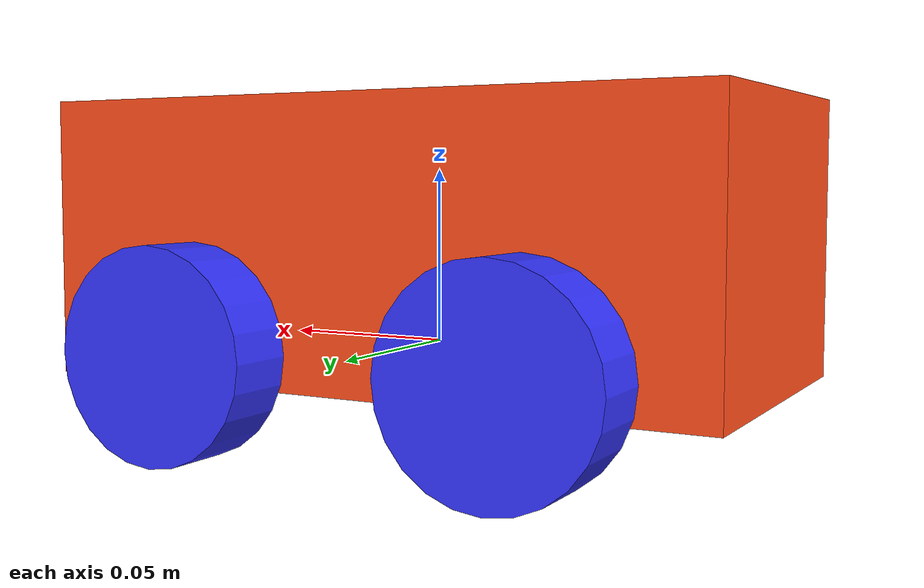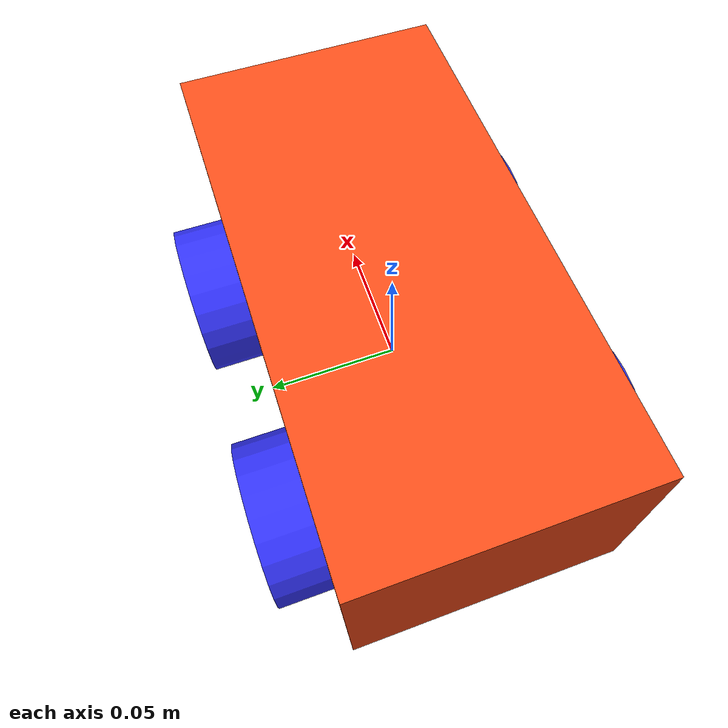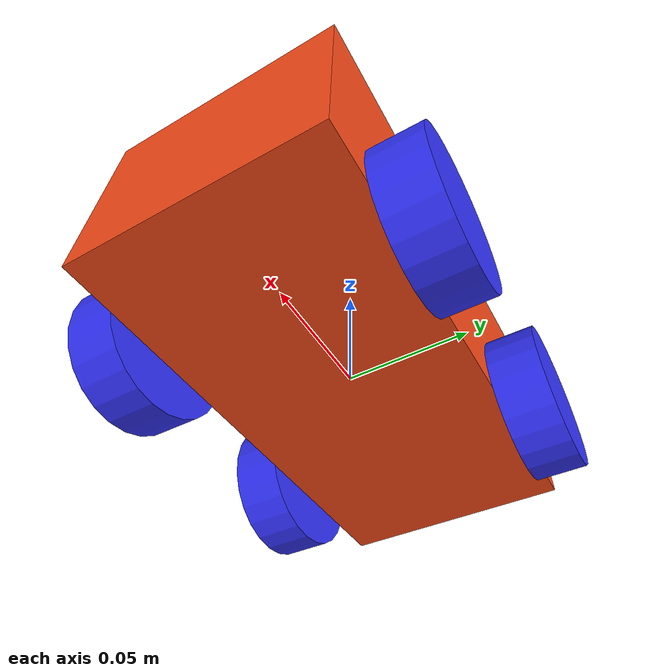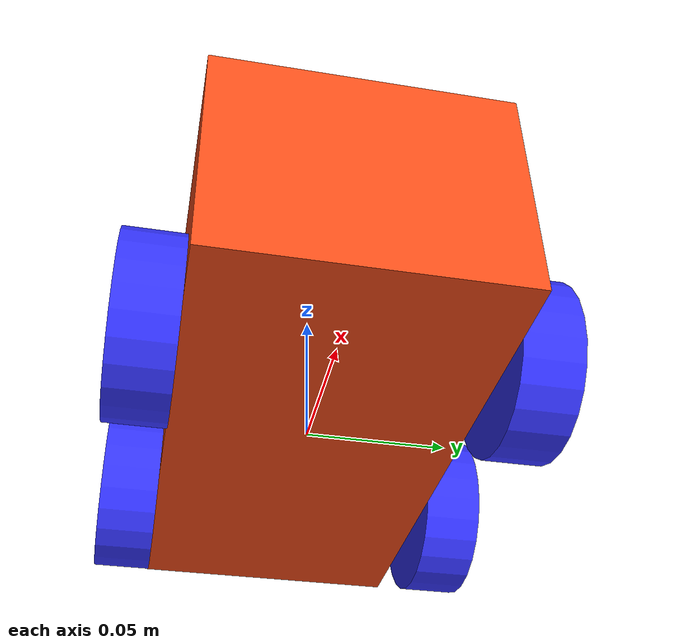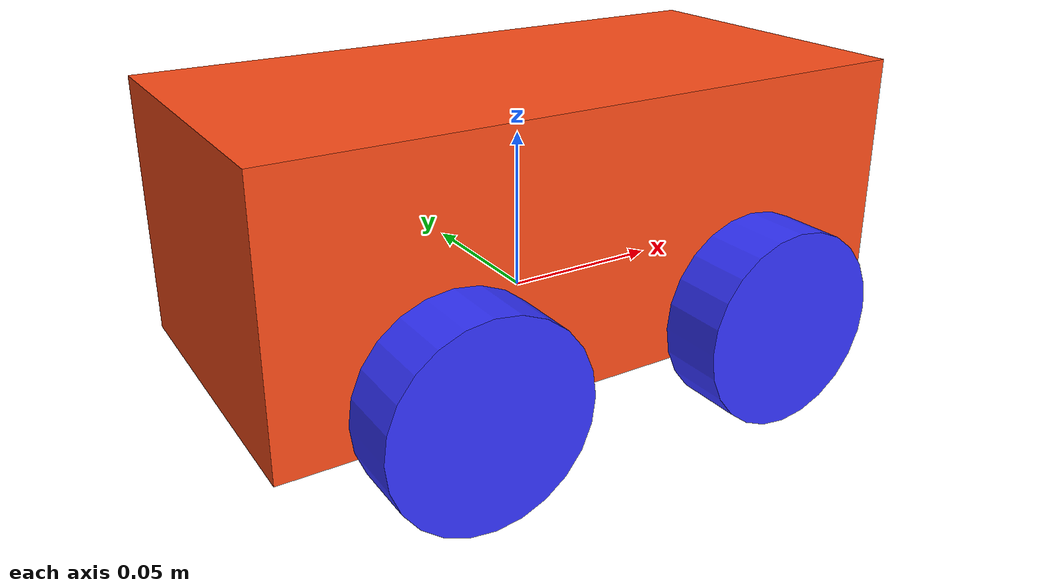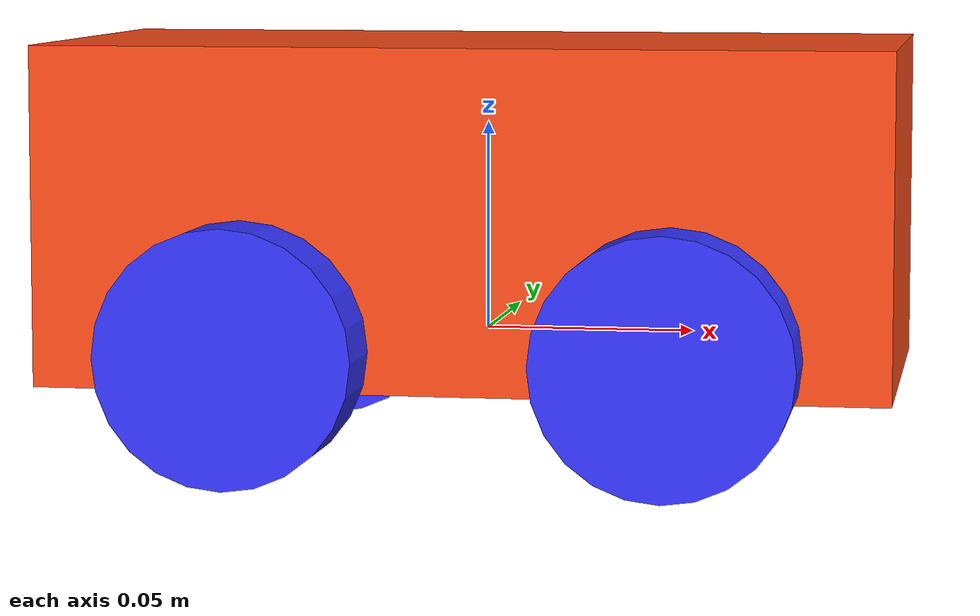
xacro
<?xml version="1.0"?>
<robot xmlns:xacro="http://www.ros.org/wiki/xacro" >

    <xacro:include filename="inertial_macros.xacro"/>

    <material name="white">
        <color rgba="1 1 1 1" />
    </material>
    <material name="orange">
        <color rgba="1 0.3 0.1 1"/>
    </material>
    <material name="blue">
        <color rgba="0.2 0.2 1 1"/>
    </material>
    <material name="black">
        <color rgba="0 0 0 1"/>
    </material>
    <material name="red">
        <color rgba="1 0 0 1"/>
    </material>

    <!-- ======= Base link ======= -->
    <link name="base_link"/>
    <joint name="base_footprint_joint" type="fixed">
        <parent link="base_link"/>
        <child link="base_footprint"/>
        <origin xyz="0 0 0" rpy="0 0 0"/>
    </joint>
    <link name="base_footprint"/>

    <!-- ======= Chassis ======= -->
    <joint name="chassis_joint" type="fixed">
        <parent link="base_link"/>
        <child link="chassis"/>
        <origin xyz="0 0 0"/>
    </joint>
    <link name="chassis">
        <visual>
            <origin xyz="0 0 0.03"/>
            <geometry>
                <box size="0.2 0.1 0.08"/>
            </geometry>
            <material name="orange"/>
        </visual>
        <collision>
            <origin xyz="0 0 0.03"/>
            <geometry>
                <box size="0.2 0.1 0.08"/>
            </geometry>
        </collision>
        <inertial>
            <mass value="10"/> <!-- 任意合理質量 -->
            <inertia ixx="1" ixy="0" ixz="0" iyy="1" iyz="0" izz="1"/>
            <origin xyz="0 0 0" rpy="0 0 0"/>
        </inertial>
    </link>
    <gazebo reference="chassis">
        <material>Gazebo/Orange</material>
    </gazebo>

    <!-- ======= front_Left Wheel ======= -->
    <joint name="front_left_wheel_joint" type="continuous">
        <parent link="base_link"/>
        <child link="front_left_wheel"/>
        <origin xyz="0.05 0.06 0" rpy="-${pi/2} 0 0"/>
        <axis xyz="0 0 1"/>
    </joint>
    <link name="front_left_wheel">
        <visual>
            <geometry>
                <cylinder radius="0.03" length="0.02"/>
            </geometry>
            <material name="blue"/>
        </visual>
        <collision>
            <geometry>
                <sphere radius="0.03"/>
            </geometry>
        </collision>
        <xacro:inertial_cylinder mass="0.05" length="0.02" radius="0.03">
            <origin xyz="0 0 0" rpy="0 0 0"/>
        </xacro:inertial_cylinder>
    </link>
    <gazebo reference="front_left_wheel">
        <material>Gazebo/Blue</material>
    </gazebo>

    <!-- ======= front_Right Wheel ======= -->
    <joint name="front_right_wheel_joint" type="continuous">
        <parent link="base_link"/>
        <child link="front_right_wheel"/>
        <origin xyz="0.05 -0.06 0" rpy="${pi/2} 0 0"/>
        <axis xyz="0 0 -1"/>
    </joint>
    <link name="front_right_wheel">
        <visual>
            <geometry>
                <cylinder radius="0.03" length="0.02"/>
            </geometry>
            <material name="blue"/>
        </visual>
        <collision>
            <geometry>
                <sphere radius="0.03"/>
            </geometry>
        </collision>
        <xacro:inertial_cylinder mass="0.05" length="0.02" radius="0.03">
            <origin xyz="0 0 0" rpy="0 0 0"/>
        </xacro:inertial_cylinder>
    </link>
    <gazebo reference="front_right_wheel">
        <material>Gazebo/Blue</material>
    </gazebo>

    <!-- ======= back_Right Wheel ======= -->
    <joint name="back_right_wheel_joint" type="continuous">
        <parent link="base_link"/>
        <child link="back_right_wheel"/>
        <origin xyz="-0.05 -0.06 0" rpy="${pi/2} 0 0"/>
        <axis xyz="0 0 -1"/>
    </joint>
    <link name="back_right_wheel">
        <visual>
            <geometry>
                <cylinder radius="0.03" length="0.02"/>
            </geometry>
            <material name="blue"/>
        </visual>
        <collision>
            <geometry>
                <sphere radius="0.03"/>
            </geometry>
        </collision>
        <xacro:inertial_cylinder mass="0.05" length="0.02" radius="0.03">
            <origin xyz="0 0 0" rpy="0 0 0"/>
        </xacro:inertial_cylinder>
    </link>
    <gazebo reference="back_right_wheel">
        <material>Gazebo/Blue</material>
    </gazebo>

    <!-- ======= back_Left Wheel ======= -->
    <joint name="back_left_wheel_joint" type="continuous">
        <parent link="base_link"/>
        <child link="back_left_wheel"/>
        <origin xyz="-0.05 0.06 0" rpy="-${pi/2} 0 0"/>
        <axis xyz="0 0 1"/>
    </joint>
    <link name="back_left_wheel">
        <visual>
            <geometry>
                <cylinder radius="0.03" length="0.02"/>
            </geometry>
            <material name="blue"/>
        </visual>
        <collision>
            <geometry>
                <sphere radius="0.03"/>
            </geometry>
        </collision>
        <xacro:inertial_cylinder mass="0.05" length="0.02" radius="0.03">
            <origin xyz="0 0 0" rpy="0 0 0"/>
        </xacro:inertial_cylinder>
    </link>
    <gazebo reference="back_left_wheel">
        <material>Gazebo/Blue</material>
    </gazebo>

    <!-- ======= Caster Wheel ======= -->

</robot>
